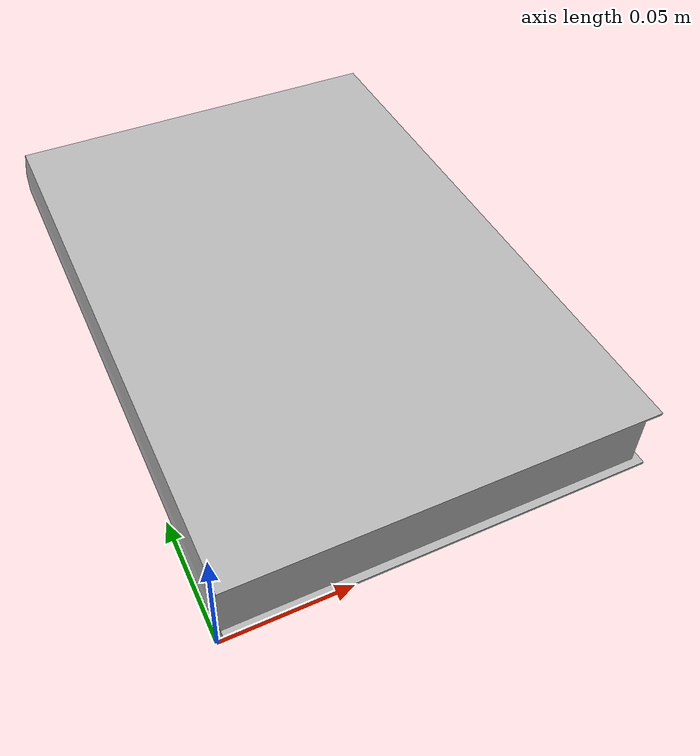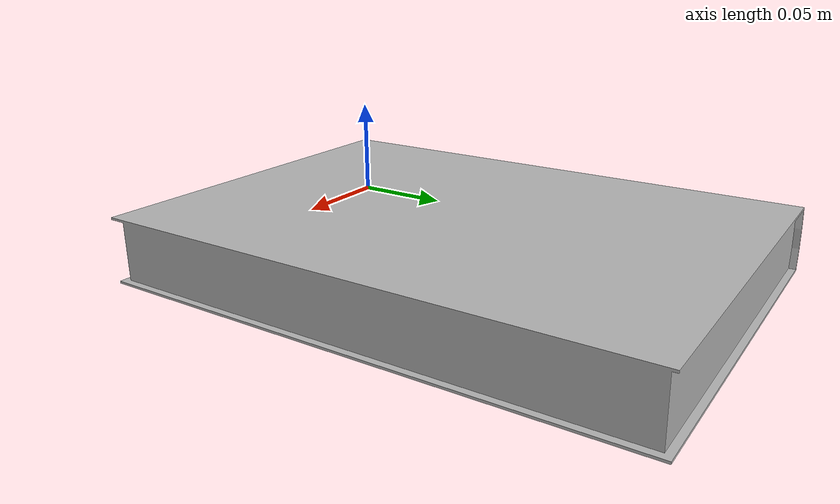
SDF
<?xml version='1.0'?>
<sdf version="1.4">
  <model name="book_orange">
    <pose>0 0 0  0 0 0</pose>
    <static>0</static>
    <link name="body">
      <inertial>
          <mass>0.6</mass>
          <inertia>
            <ixx>0.</ixx>
            <ixy>0.005780</ixy>
            <ixz>0.000000</ixz>
            <iyy>0.004545</iyy>
            <iyz>0.000000</iyz>
            <izz>0.001325</izz>
          </inertia>
      </inertial>
      <collision name="collision">
        <geometry>
          <mesh>
			  <uri>model://book_orange/meshes/book_org.obj</uri>
          </mesh>
        </geometry>
        <surface>
            <friction>
              <ode>
                <mu>30.0</mu>
                <mu2>30.0</mu2>
              </ode>
            </friction>
            <contact>
              <ode>
                <kp>1000000.0</kp>
                <kd>100.0</kd>
                <max_vel>1.0</max_vel>
                <min_depth>0.002</min_depth>
              </ode>
            </contact>
        </surface>
      </collision>
      <visual name="visual">
        <geometry>
          <mesh>
			  <uri>model://book_orange/meshes/book_org.obj</uri>
          </mesh>
        </geometry>
      </visual>
      <velocity_decay>
        <linear>0.000000</linear>
        <angular>0.000000</angular>
      </velocity_decay>
      <self_collide>0</self_collide>
      <kinematic>0</kinematic>
      <gravity>1</gravity>
    </link>
  </model>
</sdf>
